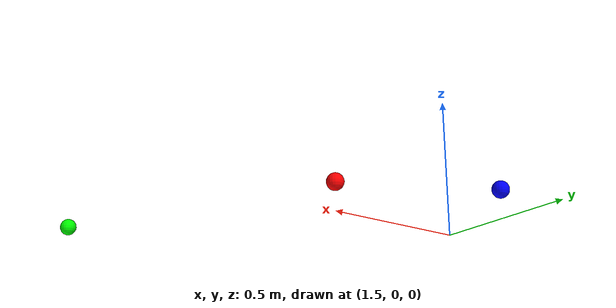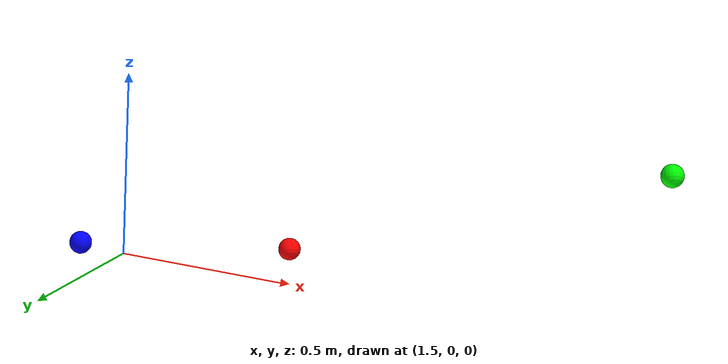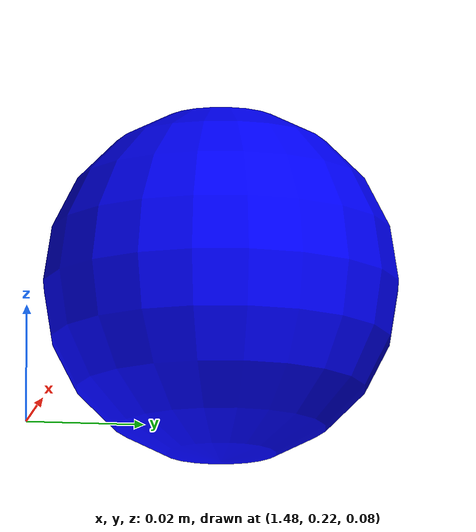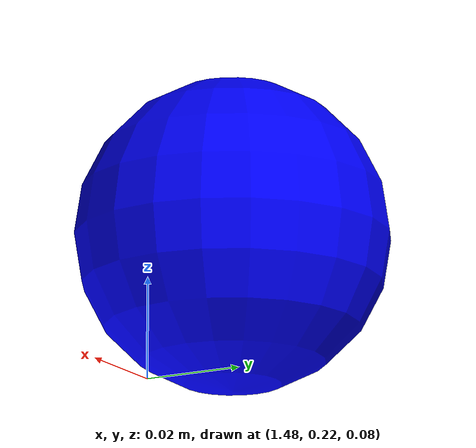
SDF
<?xml version='1.0'?>
<sdf version='1.7'>
  <model name='unit_sphere_b'>
    <link name='link'>
      <inertial>
        <mass>0.00031416</mass>
        <inertia>
          <ixx>1e-08</ixx>
          <ixy>0</ixy>
          <ixz>0</ixz>
          <iyy>1e-08</iyy>
          <iyz>0</iyz>
          <izz>1e-08</izz>
        </inertia>
        <pose>0 0 0 0 -0 0</pose>
      </inertial>
      <self_collide>1</self_collide>
      <enable_wind>0</enable_wind>
      <kinematic>1</kinematic>
      <pose>2 0 0.1 0 -0 0</pose>
      <gravity>1</gravity>
      <visual name='visual'>
        <geometry>
          <sphere>
            <radius>0.03</radius>
          </sphere>
        </geometry>
        <material>
          <script>
            <name>Gazebo/Grey</name>
            <uri>file://media/materials/scripts/gazebo.material</uri>
          </script>
          <shader type='pixel'>
            <normal_map>__default__</normal_map>
          </shader>
          <ambient>1 0 0 0</ambient>
          <diffuse>0.7 0.7 0.7 1</diffuse>
          <specular>0.01 0.01 0.01 1</specular>
          <emissive>0 0 0 1</emissive>
        </material>
        <pose>0 0 0 0 -0 0</pose>
        <transparency>0</transparency>
        <cast_shadows>1</cast_shadows>
      </visual>
      <collision name='collision'>
        <laser_retro>0</laser_retro>
        <max_contacts>10</max_contacts>
        <pose>0 0 0 0 -0 0</pose>
        <geometry>
          <sphere>
            <radius>0.01</radius>
          </sphere>
        </geometry>
        <surface>
          <friction>
            <ode>
              <mu>1</mu>
              <mu2>1</mu2>
              <fdir1>0 0 0</fdir1>
              <slip1>0</slip1>
              <slip2>0</slip2>
            </ode>
            <torsional>
              <coefficient>1</coefficient>
              <patch_radius>0</patch_radius>
              <surface_radius>0</surface_radius>
              <use_patch_radius>1</use_patch_radius>
              <ode>
                <slip>0</slip>
              </ode>
            </torsional>
          </friction>
          <bounce>
            <restitution_coefficient>0</restitution_coefficient>
            <threshold>1e+06</threshold>
          </bounce>
          <contact>
            <collide_without_contact>0</collide_without_contact>
            <collide_without_contact_bitmask>1</collide_without_contact_bitmask>
            <collide_bitmask>1</collide_bitmask>
            <ode>
              <soft_cfm>0</soft_cfm>
              <soft_erp>0.2</soft_erp>
              <kp>1e+13</kp>
              <kd>1</kd>
              <max_vel>0.01</max_vel>
              <min_depth>0</min_depth>
            </ode>
            <bullet>
              <split_impulse>1</split_impulse>
              <split_impulse_penetration_threshold>-0.01</split_impulse_penetration_threshold>
              <soft_cfm>0</soft_cfm>
              <soft_erp>0.2</soft_erp>
              <kp>1e+13</kp>
              <kd>1</kd>
            </bullet>
          </contact>
        </surface>
      </collision>
    </link>
    <link name='link_0'>
      <inertial>
        <mass>0.00031416</mass>
        <inertia>
          <ixx>1e-08</ixx>
          <ixy>0</ixy>
          <ixz>0</ixz>
          <iyy>1e-08</iyy>
          <iyz>0</iyz>
          <izz>1e-08</izz>
        </inertia>
        <pose>0 0 0 0 -0 0</pose>
      </inertial>
      <pose>2.5 -1 0.1 0 -0 0</pose>
      <gravity>1</gravity>
      <self_collide>1</self_collide>
      <kinematic>1</kinematic>
      <enable_wind>0</enable_wind>
      <visual name='visual'>
        <pose>0 0 0 0 -0 0</pose>
        <geometry>
          <sphere>
            <radius>0.03</radius>
          </sphere>
        </geometry>
        <material>
          <lighting>1</lighting>
          <script>
            <uri>file://media/materials/scripts/gazebo.material</uri>
            <name>Gazebo/Grey</name>
          </script>
          <shader type='pixel'>
            <normal_map>__default__</normal_map>
          </shader>
          <ambient>0 1 0 0</ambient>
          <diffuse>0.7 0.7 0.7 1</diffuse>
          <specular>0.01 0.01 0.01 1</specular>
          <emissive>0 0 0 1</emissive>
        </material>
        <transparency>0</transparency>
        <cast_shadows>1</cast_shadows>
      </visual>
      <collision name='collision'>
        <laser_retro>0</laser_retro>
        <max_contacts>10</max_contacts>
        <pose>0 0 0 0 -0 0</pose>
        <geometry>
          <sphere>
            <radius>0.01</radius>
          </sphere>
        </geometry>
        <surface>
          <friction>
            <ode>
              <mu>1</mu>
              <mu2>1</mu2>
              <fdir1>0 0 0</fdir1>
              <slip1>0</slip1>
              <slip2>0</slip2>
            </ode>
            <torsional>
              <coefficient>1</coefficient>
              <patch_radius>0</patch_radius>
              <surface_radius>0</surface_radius>
              <use_patch_radius>1</use_patch_radius>
              <ode>
                <slip>0</slip>
              </ode>
            </torsional>
          </friction>
          <bounce>
            <restitution_coefficient>0</restitution_coefficient>
            <threshold>1e+06</threshold>
          </bounce>
          <contact>
            <collide_without_contact>0</collide_without_contact>
            <collide_without_contact_bitmask>1</collide_without_contact_bitmask>
            <collide_bitmask>1</collide_bitmask>
            <ode>
              <soft_cfm>0</soft_cfm>
              <soft_erp>0.2</soft_erp>
              <kp>1e+13</kp>
              <kd>1</kd>
              <max_vel>0.01</max_vel>
              <min_depth>0</min_depth>
            </ode>
            <bullet>
              <split_impulse>1</split_impulse>
              <split_impulse_penetration_threshold>-0.01</split_impulse_penetration_threshold>
              <soft_cfm>0</soft_cfm>
              <soft_erp>0.2</soft_erp>
              <kp>1e+13</kp>
              <kd>1</kd>
            </bullet>
          </contact>
        </surface>
      </collision>
    </link>
    <link name='link_1'>
      <inertial>
        <mass>0.01</mass>
        <inertia>
          <ixx>4e-07</ixx>
          <ixy>0</ixy>
          <ixz>0</ixz>
          <iyy>4e-07</iyy>
          <iyz>0</iyz>
          <izz>4e-07</izz>
        </inertia>
        <pose>0 0 0 0 -0 0</pose>
      </inertial>
      <pose>1.5 0.25 0.1 0 -0 0</pose>
      <gravity>1</gravity>
      <self_collide>1</self_collide>
      <kinematic>1</kinematic>
      <enable_wind>0</enable_wind>
      <visual name='visual'>
        <pose>0 0 0 0 -0 0</pose>
        <geometry>
          <sphere>
            <radius>0.03</radius>
          </sphere>
        </geometry>
        <material>
          <lighting>1</lighting>
          <script>
            <uri>file://media/materials/scripts/gazebo.material</uri>
            <name>Gazebo/Grey</name>
          </script>
          <shader type='pixel'>
            <normal_map>__default__</normal_map>
          </shader>
          <ambient>0 0 1 0</ambient>
          <diffuse>0.7 0.7 0.7 1</diffuse>
          <specular>0.01 0.01 0.01 1</specular>
          <emissive>0 0 0 1</emissive>
        </material>
        <transparency>0</transparency>
        <cast_shadows>1</cast_shadows>
      </visual>
      <collision name='collision'>
        <laser_retro>0</laser_retro>
        <max_contacts>10</max_contacts>
        <pose>0 0 0 0 -0 0</pose>
        <geometry>
          <sphere>
            <radius>0.01</radius>
          </sphere>
        </geometry>
        <surface>
          <friction>
            <ode>
              <mu>1</mu>
              <mu2>1</mu2>
              <fdir1>0 0 0</fdir1>
              <slip1>0</slip1>
              <slip2>0</slip2>
            </ode>
            <torsional>
              <coefficient>1</coefficient>
              <patch_radius>0</patch_radius>
              <surface_radius>0</surface_radius>
              <use_patch_radius>1</use_patch_radius>
              <ode>
                <slip>0</slip>
              </ode>
            </torsional>
          </friction>
          <bounce>
            <restitution_coefficient>0</restitution_coefficient>
            <threshold>1e+06</threshold>
          </bounce>
          <contact>
            <collide_without_contact>0</collide_without_contact>
            <collide_without_contact_bitmask>1</collide_without_contact_bitmask>
            <collide_bitmask>1</collide_bitmask>
            <ode>
              <soft_cfm>0</soft_cfm>
              <soft_erp>0.2</soft_erp>
              <kp>1e+13</kp>
              <kd>1</kd>
              <max_vel>0.01</max_vel>
              <min_depth>0</min_depth>
            </ode>
            <bullet>
              <split_impulse>1</split_impulse>
              <split_impulse_penetration_threshold>-0.01</split_impulse_penetration_threshold>
              <soft_cfm>0</soft_cfm>
              <soft_erp>0.2</soft_erp>
              <kp>1e+13</kp>
              <kd>1</kd>
            </bullet>
          </contact>
        </surface>
      </collision>
    </link>
    <static>0</static>
    <allow_auto_disable>1</allow_auto_disable>
  </model>
</sdf>
